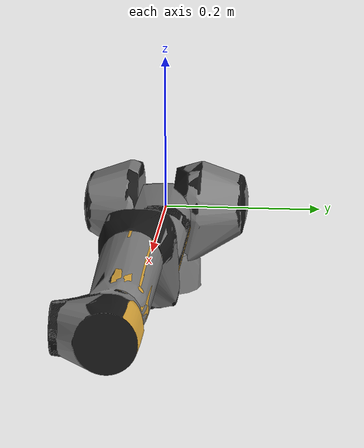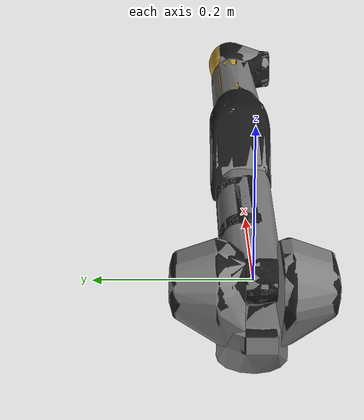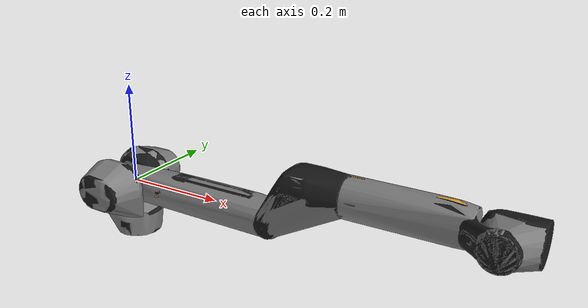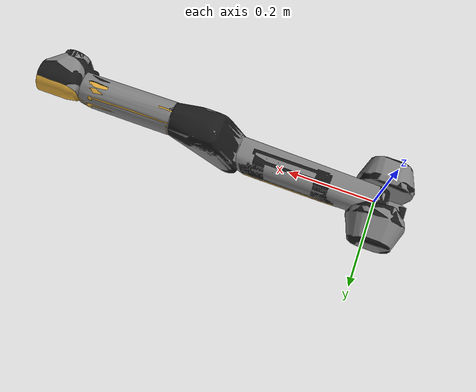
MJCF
<mujoco model="spot arm">
  <compiler angle="radian"/>
  <option integrator="implicitfast" cone="elliptic" impratio="100"/>
  <visual>
    <global ellipsoidinertia="true"/>
  </visual>

<asset>
    <material name="BlackAbs" rgba="0.1 0.1 0.1 1"/>
    <material name="wrap" rgba="0.878431 0.666666 0.227450 1"/>

    <mesh name="arm_link_sh0" file="meshes/arm_link_sh0.obj"/>
    <mesh name="arm_link_sh1_0" file="meshes/arm_link_sh1_0.obj"/>
    <mesh name="arm_link_sh1_1" file="meshes/arm_link_sh1_1.obj"/>
    <mesh name="arm_link_hr0" file="meshes/arm_link_hr0.obj"/>
    <mesh name="arm_link_el0" file="meshes/arm_link_el0.obj"/>
    <mesh name="arm_link_el1_0" file="meshes/arm_link_el1_0.obj"/>
    <mesh name="arm_link_el1_1" file="meshes/arm_link_el1_1.obj"/>
    <mesh name="arm_link_wr0_0" file="meshes/arm_link_wr0_0.obj"/>
    <mesh name="arm_link_wr0_1" file="meshes/arm_link_wr0_1.obj"/>
    <mesh name="arm_link_sh0_base_coll" file="meshes/arm_link_sh0_base.obj"/>
    <mesh name="arm_link_sh0_left_motor_coll" file="meshes/arm_link_sh0_left_motor.obj"/>
    <mesh name="arm_link_sh0_right_motor_coll" file="meshes/arm_link_sh0_right_motor.obj"/>
    <mesh name="arm_link_hr0_coll" file="meshes/arm_link_hr0_coll.obj"/>
    <mesh name="arm_link_el0_coll" file="meshes/arm_link_el0_coll.obj"/>
    <mesh name="arm_link_el1_main_coll" file="meshes/arm_link_el1_main.obj"/>
    <mesh name="arm_link_el1_lip_coll" file="meshes/arm_link_el1_lip.obj"/>
    <mesh name="arm_link_wr0_coll" file="meshes/arm_link_wr0.obj"/>
  </asset>

  <default>
    <default class="spot_arm">
      <geom solref="0.004 1"/>
      <joint actuatorfrcrange="-1000 1000"/>
      <position kp="500" kv="40" inheritrange="1"/>
      <motor ctrlrange="-33.5 33.5"  ctrllimited="true"/>
    </default>
    <default class="spot_arm_visual">
      <joint actuatorfrcrange="-1000 1000"/>
      <position kp="500" kv="40" inheritrange="1"/>
      <geom group="1" type="mesh" contype="0" conaffinity="0" solref="0.004 1"/>
    </default>
    <default class="spot_arm_collision">
        <joint actuatorfrcrange="-1000 1000"/>
        <position kp="500" kv="40" inheritrange="1"/>
        <geom group="0" type="mesh" solref="0.004 1"/>
    </default>
  </default>

  <worldbody>
    <body name="base" pos="0 0 0">
      <body name="arm_link_sh0" pos="0 0 0">
        <site name="right_center" pos="0 0 0" size="0.01" rgba="1 0.3 0.3 1" group="2"/>
        <inertial pos="-0.0123727 -4.52114e-05 -0.021032" quat="0.707107 0.707107 0 0" mass="2.3364"
          diaginertia="0.0090143 0.00778748 0.0058351"/>
        <joint name="arm_sh0" axis="0 0 1" range="-2.61799 3.14159"/>
        <geom material="BlackAbs" mesh="arm_link_sh0" class="spot_arm_visual" rgba=".1 .1 .1 1"/>
        <geom class="spot_arm_collision" mesh="arm_link_sh0_base_coll"/>
        <geom class="spot_arm_collision" mesh="arm_link_sh0_left_motor_coll"/>
        <geom class="spot_arm_collision" mesh="arm_link_sh0_right_motor_coll"/>
        <body name="arm_link_sh1">
          <inertial pos="2.41764e-05 2.41161e-06 -1.00591e-05" quat="1 1 -1 1" mass="0.2596"
            diaginertia="0.00020385 0.000202928 0.000170786"/>
          <joint name="arm_sh1" axis="0 1 0" range="-3.14159 0.523599"/>
          <geom mesh="arm_link_sh1_0" material="wrap" class="spot_arm_visual"/>
          <geom mesh="arm_link_sh1_1" material="BlackAbs" class="spot_arm_visual"/>
          <body name="arm_link_hr0">
            <inertial pos="0.17047 -0.0019251 4.48389e-05" quat="0 1 0 1" mass="1e-06"
              diaginertia="1.16111e-08 1.14871e-08 6.31263e-10"/>
            <geom class="spot_arm_collision" mesh="arm_link_hr0_coll"/>
            <body name="arm_link_el0" pos="0.3385 0 0">
              <inertial pos="0.0553741 0.000236034 0.048272" quat="1 1 1 1" mass="0.725"
                diaginertia="0.00200479 0.00197228 0.000821537"/>
              <joint name="arm_el0" axis="0 1 0" range="0 3.14159"/>
              <geom material="BlackAbs" mesh="arm_link_el0" class="spot_arm_visual"/>
              <geom mesh="arm_link_el0_coll" class="spot_arm_collision"/>
              <body name="arm_link_el1" pos="0.4033 0 0.075">
                <inertial pos="-0.125784 -0.0136845 0.000101579" quat="0 1 0 1" mass="0.725"
                  diaginertia="0.00451592 0.00440245 0.000625481"/>
                <joint name="arm_el1" axis="1 0 0" range="-2.79253 2.79253"/>
                <geom mesh="arm_link_el1_0" material="wrap" class="spot_arm_visual"/>
                <geom mesh="arm_link_el1_1" material="BlackAbs" class="spot_arm_visual"/>
                <geom class="spot_arm_collision" mesh="arm_link_el1_main_coll"/>
                <geom class="spot_arm_collision" mesh="arm_link_el1_lip_coll"/>
                <body name="arm_link_wr0">
                  <inertial pos="0.00821068 -0.012051 3.14348e-05" quat="1 1 -1 1" mass="0.98"
                    diaginertia="0.00123549 0.000985132 0.000891615"/>
                  <joint name="arm_wr0" axis="0 1 0" range="-1.8326 1.8326"/>
                  <geom mesh="arm_link_wr0_0" material="wrap" class="spot_arm_visual"/>
                  <geom mesh="arm_link_wr0_1" material="BlackAbs" class="spot_arm_visual"/>
                  <geom class="spot_arm_collision" mesh="arm_link_wr0_coll"/>
                  <body name="arm_link_wr1">
                    <inertial pos="0.125168 0.000101374 -0.013998" quat="1 1 1 1" mass="0.785"
                      diaginertia="0.00176281 0.00168181 0.000767414"/>
                    <joint name="arm_wr1" axis="1 0 0" range="-2.87979 2.87979"/>
                    <!--Start of right_hand-->
                    <body name="right_hand" pos="0.0 0.0 0.0" quat="1 0 0 0">
                        <camera mode="fixed" name="right_eye_in_hand" pos="0.05 0 0" quat="0.5 0.5 -0.5 -0.5" fovy="75"/>
                    </body>
                  </body>
                </body>
              </body>
            </body>
          </body>
        </body>
      </body>
    </body>
  </worldbody>

  <actuator>
    <motor class="spot_arm" name="arm_sh0" joint="arm_sh0"/>
    <motor class="spot_arm" name="arm_sh1" joint="arm_sh1"/>
    <motor class="spot_arm" name="arm_el0" joint="arm_el0"/>
    <motor class="spot_arm" name="arm_el1" joint="arm_el1"/>
    <motor class="spot_arm" name="arm_wr0" joint="arm_wr0"/>
    <motor class="spot_arm" name="arm_wr1" joint="arm_wr1"/>
  </actuator>
</mujoco>
